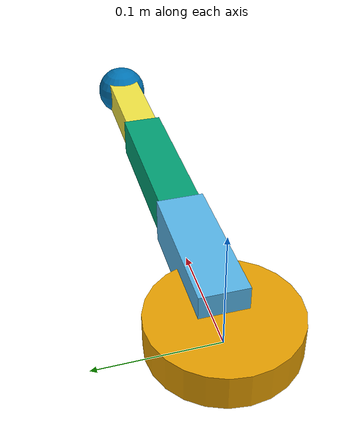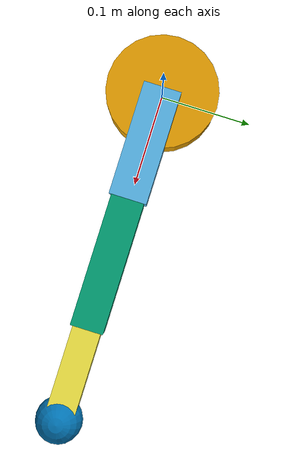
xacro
<?xml version="1.0"?>
<robot name="dobot_magician" xmlns:xacro="http://www.ros.org/wiki/xacro">

  <!-- ================= BASE ================= -->
  <link name="base_link">
    <visual>
      <geometry>
        <cylinder radius="0.06" length="0.03"/>
      </geometry>
      <origin xyz="0 0 0.015"/>
    </visual>

    <collision>
      <geometry>
        <cylinder radius="0.06" length="0.03"/>
      </geometry>
      <origin xyz="0 0 0.015"/>
    </collision>

    <inertial>
      <mass value="1.0"/>
      <inertia ixx="0.01" iyy="0.01" izz="0.01"
               ixy="0" ixz="0" iyz="0"/>
    </inertial>
  </link>

  <!-- ================= JOINT 1 ================= -->
  <joint name="joint1" type="revolute">
    <parent link="base_link"/>
    <child link="magician_link_1"/>
    <origin xyz="0 0 0.03" rpy="0 0 0"/>
    <axis xyz="0 0 1"/>
    <limit lower="-3.14" upper="3.14" effort="5" velocity="1.5"/>
  </joint>

  <!-- ================= LINK 1 ================= -->
  <link name="magician_link_1">
    <visual>
      <geometry>
        <box size="0.12 0.04 0.04"/>
      </geometry>
      <origin xyz="0.06 0 0"/>
    </visual>

    <collision>
      <geometry>
        <box size="0.12 0.04 0.04"/>
      </geometry>
      <origin xyz="0.06 0 0"/>
    </collision>

    <inertial>
      <mass value="0.6"/>
      <inertia ixx="0.006" iyy="0.006" izz="0.006"
               ixy="0" ixz="0" iyz="0"/>
    </inertial>
  </link>

  <!-- ================= JOINT 2 ================= -->
  <joint name="joint2" type="revolute">
    <parent link="magician_link_1"/>
    <child link="magician_link_2"/>
    <origin xyz="0.12 0 0" rpy="0 0 0"/>
    <axis xyz="0 1 0"/>
    <limit lower="-2.5" upper="2.5" effort="5" velocity="1.5"/>
  </joint>

  <!-- ================= LINK 2 ================= -->
  <link name="magician_link_2">
    <visual>
      <geometry>
        <box size="0.14 0.035 0.035"/>
      </geometry>
      <origin xyz="0.07 0 0"/>
    </visual>

    <collision>
      <geometry>
        <box size="0.14 0.035 0.035"/>
      </geometry>
      <origin xyz="0.07 0 0"/>
    </collision>

    <inertial>
      <mass value="0.5"/>
      <inertia ixx="0.005" iyy="0.005" izz="0.005"
               ixy="0" ixz="0" iyz="0"/>
    </inertial>
  </link>

  <!-- ================= JOINT 3 ================= -->
  <joint name="joint3" type="revolute">
    <parent link="magician_link_2"/>
    <child link="magician_link_3"/>
    <origin xyz="0.14 0 0" rpy="0 0 0"/>
    <axis xyz="0 1 0"/>
    <limit lower="-2.5" upper="2.5" effort="4" velocity="1.5"/>
  </joint>

  <!-- ================= LINK 3 ================= -->
  <link name="magician_link_3">
    <visual>
      <geometry>
        <box size="0.10 0.03 0.03"/>
      </geometry>
      <origin xyz="0.05 0 0"/>
    </visual>

    <collision>
      <geometry>
        <box size="0.10 0.03 0.03"/>
      </geometry>
      <origin xyz="0.05 0 0"/>
    </collision>

    <inertial>
      <mass value="0.4"/>
      <inertia ixx="0.004" iyy="0.004" izz="0.004"
               ixy="0" ixz="0" iyz="0"/>
    </inertial>
  </link>

  <!-- ================= JOINT 4 ================= -->
  <joint name="joint4" type="revolute">
    <parent link="magician_link_3"/>
    <child link="tool0"/>
    <origin xyz="0.10 0 0" rpy="0 0 0"/>
    <axis xyz="1 0 0"/>
    <limit lower="-3.14" upper="3.14" effort="3" velocity="2.0"/>
  </joint>

  <!-- ================= TOOL ================= -->
  <link name="tool0">
    <visual>
      <geometry>
        <sphere radius="0.025"/>
      </geometry>
    </visual>

    <collision>
      <geometry>
        <sphere radius="0.025"/>
      </geometry>
    </collision>

    <inertial>
      <mass value="0.2"/>
      <inertia ixx="0.001" iyy="0.001" izz="0.001"
               ixy="0" ixz="0" iyz="0"/>
    </inertial>
  </link>

</robot>
